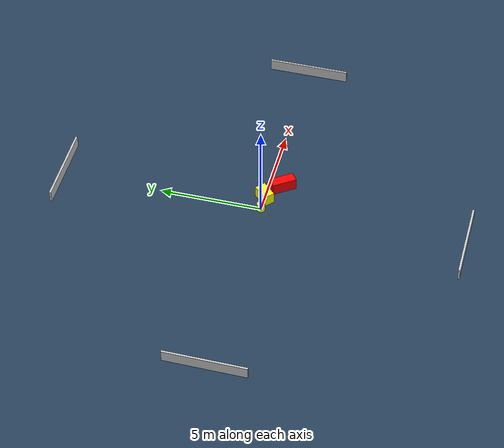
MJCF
<?xml version="1.0" ?>
<mujoco model="generated_environment">
  <option timestep="0.01" integrator="RK4" cone="elliptic"/>
  <default>
    <geom density="1"/>
  </default>
  <asset>
    <texture builtin="gradient" height="3072" name="skybox" rgb1="0.3 0.5 0.7" rgb2="0 0 0" type="skybox" width="512"/>
    <texture builtin="checker" height="300" name="groundplane" rgb1="0.2 0.3 0.4" rgb2="0.1 0.2 0.3" type="2d" width="300"/>
    <material name="groundplane" reflectance="0.2" texrepeat="5 5" texture="groundplane"/>
  </asset>
  <worldbody>
    <light dir="0 0 -1" directional="true" pos="0 0 1.5"/>
    <geom condim="3" friction="0.5 0.005 0.001" material="groundplane" name="floor" pos="0 0 0" size="0 0 0.05" type="plane"/>
    <body name="walls">
      <geom name="wall_1" condim="4" pos="-10.0 0.0 0.3" rgba="0.800000011920929 0.800000011920929 0.800000011920929 1.0" size="0.05 2.0 0.3" type="box"/>
      <geom name="wall_2" condim="4" pos="10.0 0.0 0.3" rgba="0.800000011920929 0.800000011920929 0.800000011920929 1.0" size="0.05 2.0 0.3" type="box"/>
      <geom name="wall_3" condim="4" pos="0.0 -10.0 0.3" rgba="0.800000011920929 0.800000011920929 0.800000011920929 1.0" size="2.0 0.05 0.3" type="box"/>
      <geom name="wall_4" condim="4" pos="0.0 10.0 0.3" rgba="0.800000011920929 0.800000011920929 0.800000011920929 1.0" size="2.0 0.05 0.3" type="box"/>
    </body>
    <body name="robot">
      <joint name="joint_x" type="slide" pos="0 0 0" axis="1 0 0"/>
      <joint name="joint_y" type="slide" pos="0 0 0" axis="0 1 0"/>
      <geom name="robot" type="cylinder" pos="0.0 0.0 0.2" size="0.2 0.2 0.0" mass="5.0" friction="1.0 0.005 0.0001" condim="4" rgba="1.0 1.0 0.0 1.0"/>
    </body>
    <body name="obstacle_1_movable">
      <geom name="obstacle_1_movable" condim="4" pos="0.7392333004453123 -0.0012297272153750517 0.3" euler="0 0 136.1874430323248" friction="0.0 0.005 0.001" rgba="1.0 1.0 0.0 1.0" size="0.27584687688649184 0.4223011094883502 0.3" type="box" mass="0.1"/>
      <joint type="free"/>
    </body>
    <body name="obstacle_2_static">
      <geom name="obstacle_2_static" condim="4" pos="1.670457206704079 -0.6759001095889804 0.3" euler="0 0 214.90076350624122" friction="0.0 0.005 0.001" rgba="1.0 0.0 0.0 1.0" size="0.24617464174969422 0.6080749667502923 0.3" type="box"/>
    </body>
  </worldbody>
  <actuator>
    <motor name="actuator_x" joint="joint_x" gear="1" ctrlrange="-1 1"/>
    <motor name="actuator_y" joint="joint_y" gear="1" ctrlrange="-1 1"/>
  </actuator>
</mujoco>
